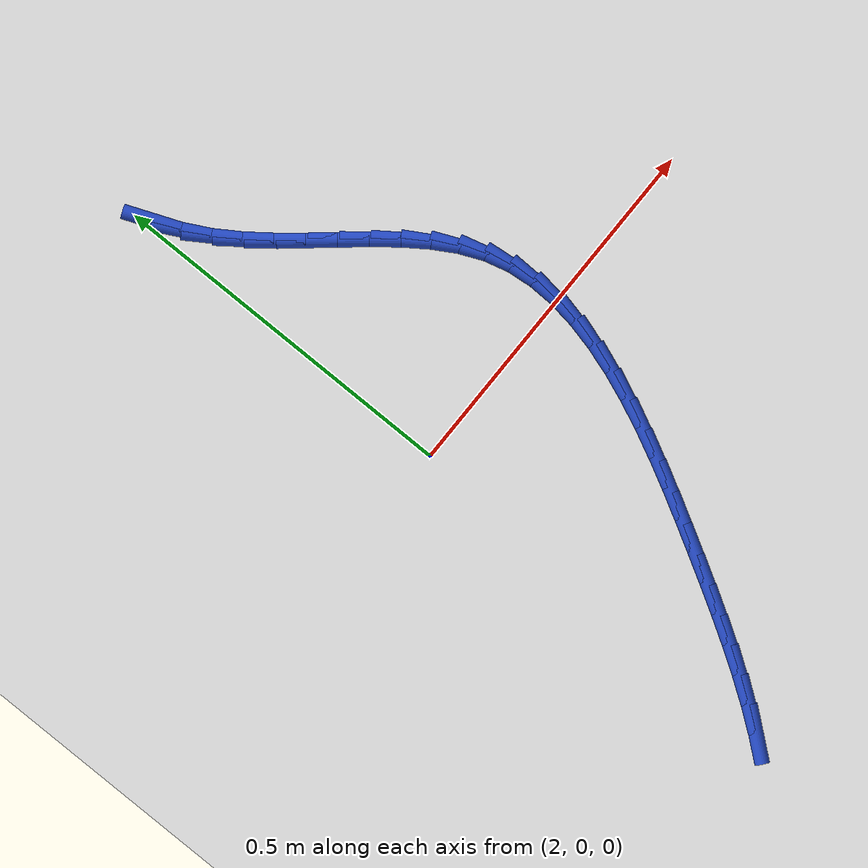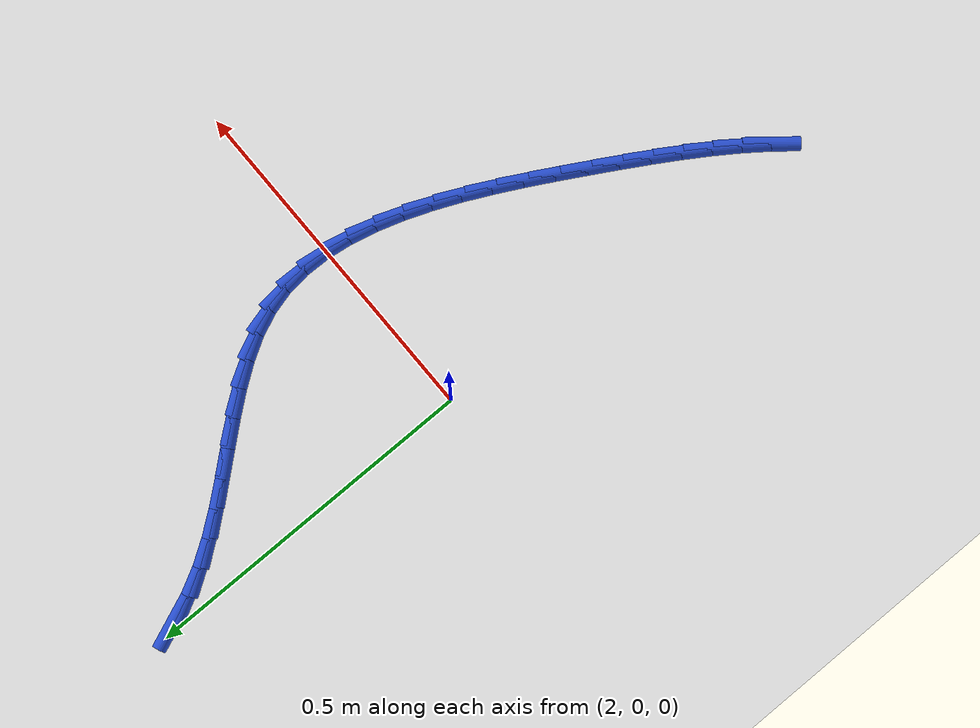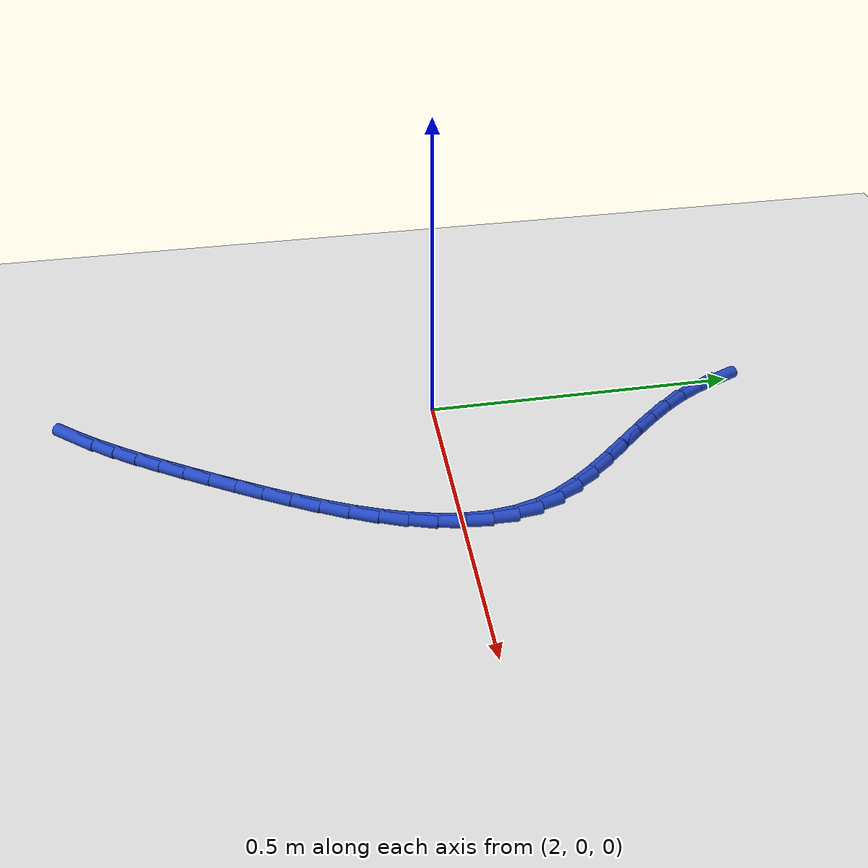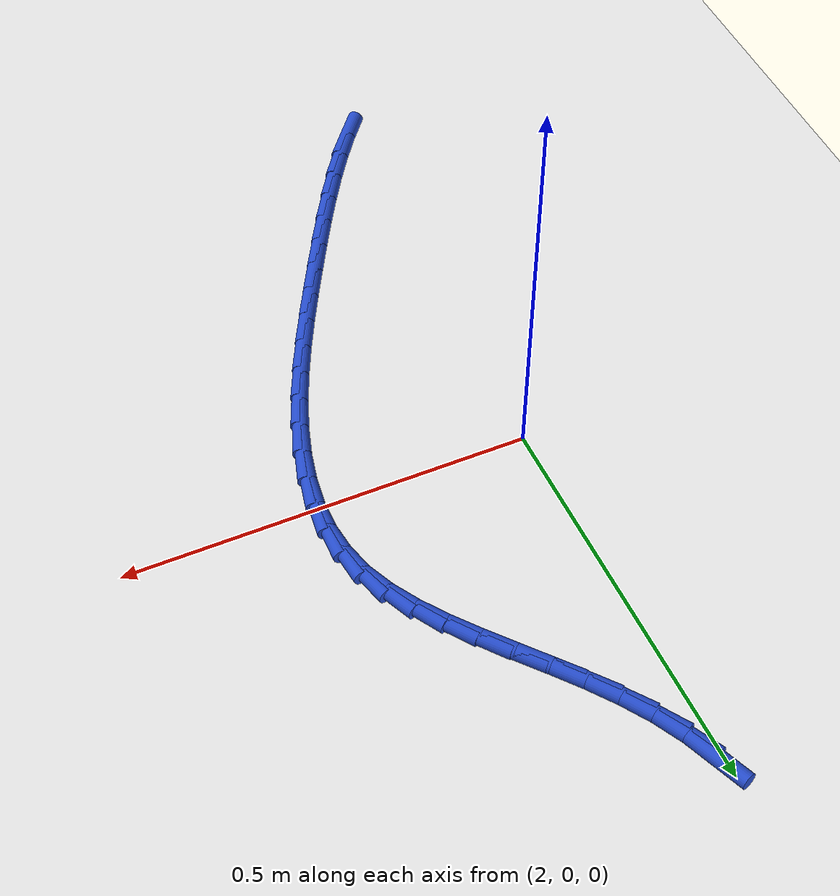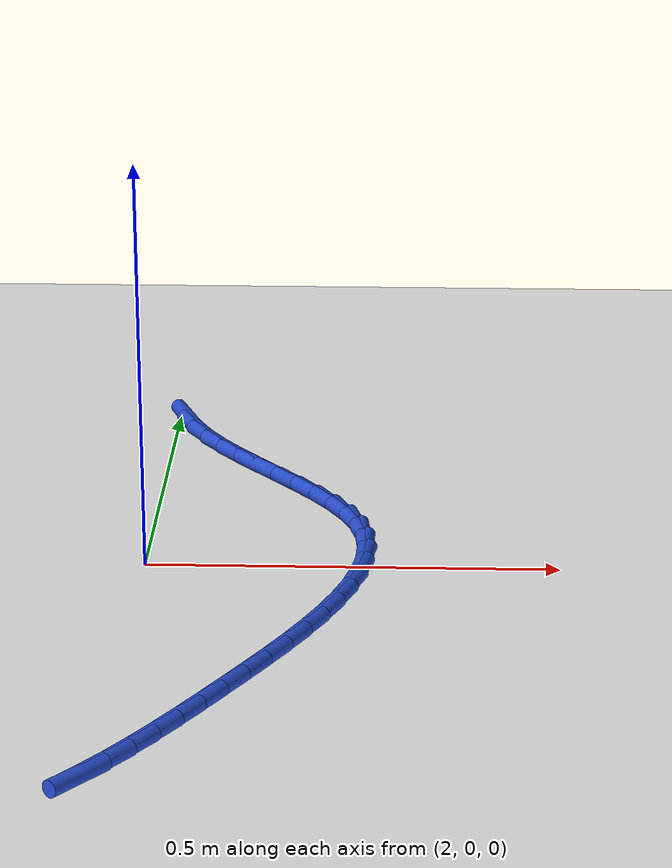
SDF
<sdf version="1.6">
 <world name="default">
  <model name="ground_plane">
   <static>1</static>
   <link name="link">
    <collision name="collision">
     <geometry><plane><normal>0 0 1</normal><size>100 100</size></plane></geometry>
     <surface><friction><ode><mu>100</mu><mu2>50</mu2></ode></friction></surface>
    </collision>
    <visual name="visual">
     <cast_shadows>0</cast_shadows>
     <geometry><plane><normal>0 0 1</normal><size>100 100</size></plane></geometry>
     <material>
      <script><uri>file://media/materials/scripts/gazebo.material</uri><name>Gazebo/WhiteGlow</name></script>
     </material>
    </visual>
   </link>
  </model>
  <model name="line">
   <link name="link_75">
    <pose>2.009465036958212 0.47721099685239343 0.01 0 1.57 -1.1901596395460023</pose>
    <collision name="collision">
     <geometry><cylinder><radius>0.01</radius><length>0.08</length></cylinder></geometry>
    </collision>
    <visual name="visual">
     <material>
      <script><name>Gazebo/Blue</name><uri>file://media/materials/scripts/gazebo.material</uri></script>
     </material>
     <geometry><cylinder><radius>0.01</radius><length>0.08</length></cylinder></geometry>
    </visual>
   </link>
   <link name="link_76">
    <pose>2.0244630913120405 0.4397300257425696 0.01 0 1.57 -1.0890325268328094</pose>
    <collision name="collision">
     <geometry><cylinder><radius>0.01</radius><length>0.08</length></cylinder></geometry>
    </collision>
    <visual name="visual">
     <material>
      <script><name>Gazebo/Blue</name><uri>file://media/materials/scripts/gazebo.material</uri></script>
     </material>
     <geometry><cylinder><radius>0.01</radius><length>0.08</length></cylinder></geometry>
    </visual>
   </link>
   <link name="link_77">
    <pose>2.0432723561949198 0.4037558578952057 0.01 0 1.57 -0.9953839938297087</pose>
    <collision name="collision">
     <geometry><cylinder><radius>0.01</radius><length>0.08</length></cylinder></geometry>
    </collision>
    <visual name="visual">
     <material>
      <script><name>Gazebo/Blue</name><uri>file://media/materials/scripts/gazebo.material</uri></script>
     </material>
     <geometry><cylinder><radius>0.01</radius><length>0.08</length></cylinder></geometry>
    </visual>
   </link>
   <link name="link_78">
    <pose>2.0656333263838604 0.36928176543898505 0.01 0 1.57 -0.9282982456410209</pose>
    <collision name="collision">
     <geometry><cylinder><radius>0.01</radius><length>0.08</length></cylinder></geometry>
    </collision>
    <visual name="visual">
     <material>
      <script><name>Gazebo/Blue</name><uri>file://media/materials/scripts/gazebo.material</uri></script>
     </material>
     <geometry><cylinder><radius>0.01</radius><length>0.08</length></cylinder></geometry>
    </visual>
   </link>
   <link name="link_79">
    <pose>2.090542085906743 0.3360005926293049 0.01 0 1.57 -0.8861530608375257</pose>
    <collision name="collision">
     <geometry><cylinder><radius>0.01</radius><length>0.08</length></cylinder></geometry>
    </collision>
    <visual name="visual">
     <material>
      <script><name>Gazebo/Blue</name><uri>file://media/materials/scripts/gazebo.material</uri></script>
     </material>
     <geometry><cylinder><radius>0.01</radius><length>0.08</length></cylinder></geometry>
    </visual>
   </link>
   <link name="link_80">
    <pose>2.116990211699759 0.30360336475807675 0.01 0 1.57 -0.8675779567971761</pose>
    <collision name="collision">
     <geometry><cylinder><radius>0.01</radius><length>0.08</length></cylinder></geometry>
    </collision>
    <visual name="visual">
     <material>
      <script><name>Gazebo/Blue</name><uri>file://media/materials/scripts/gazebo.material</uri></script>
     </material>
     <geometry><cylinder><radius>0.01</radius><length>0.08</length></cylinder></geometry>
    </visual>
   </link>
   <link name="link_81">
    <pose>2.1439692806990953 0.27178110711721254 0.01 0 1.57 -0.8722418772306473</pose>
    <collision name="collision">
     <geometry><cylinder><radius>0.01</radius><length>0.08</length></cylinder></geometry>
    </collision>
    <visual name="visual">
     <material>
      <script><name>Gazebo/Blue</name><uri>file://media/materials/scripts/gazebo.material</uri></script>
     </material>
     <geometry><cylinder><radius>0.01</radius><length>0.08</length></cylinder></geometry>
    </visual>
   </link>
   <link name="link_82">
    <pose>2.1704708698409445 0.24022484499862362 0.01 0 1.57 -0.9011647699806342</pose>
    <collision name="collision">
     <geometry><cylinder><radius>0.01</radius><length>0.08</length></cylinder></geometry>
    </collision>
    <visual name="visual">
     <material>
      <script><name>Gazebo/Blue</name><uri>file://media/materials/scripts/gazebo.material</uri></script>
     </material>
     <geometry><cylinder><radius>0.01</radius><length>0.08</length></cylinder></geometry>
    </visual>
   </link>
   <link name="link_83">
    <pose>2.1954865560614936 0.20862560369422084 0.01 0 1.57 -0.9568110245400535</pose>
    <collision name="collision">
     <geometry><cylinder><radius>0.01</radius><length>0.08</length></cylinder></geometry>
    </collision>
    <visual name="visual">
     <material>
      <script><name>Gazebo/Blue</name><uri>file://media/materials/scripts/gazebo.material</uri></script>
     </material>
     <geometry><cylinder><radius>0.01</radius><length>0.08</length></cylinder></geometry>
    </visual>
   </link>
   <link name="link_84">
    <pose>2.2180079162969335 0.17667440849591654 0.01 0 1.57 -1.0428392000214557</pose>
    <collision name="collision">
     <geometry><cylinder><radius>0.01</radius><length>0.08</length></cylinder></geometry>
    </collision>
    <visual name="visual">
     <material>
      <script><name>Gazebo/Blue</name><uri>file://media/materials/scripts/gazebo.material</uri></script>
     </material>
     <geometry><cylinder><radius>0.01</radius><length>0.08</length></cylinder></geometry>
    </visual>
   </link>
   <link name="link_85">
    <pose>2.237026527483454 0.14406228469562143 0.01 0 1.57 -1.1630115037468067</pose>
    <collision name="collision">
     <geometry><cylinder><radius>0.01</radius><length>0.08</length></cylinder></geometry>
    </collision>
    <visual name="visual">
     <material>
      <script><name>Gazebo/Blue</name><uri>file://media/materials/scripts/gazebo.material</uri></script>
     </material>
     <geometry><cylinder><radius>0.01</radius><length>0.08</length></cylinder></geometry>
    </visual>
   </link>
   <link name="link_86">
    <pose>2.251533966557244 0.11048025758524764 0.01 0 1.57 -1.3146001437915522</pose>
    <collision name="collision">
     <geometry><cylinder><radius>0.01</radius><length>0.08</length></cylinder></geometry>
    </collision>
    <visual name="visual">
     <material>
      <script><name>Gazebo/Blue</name><uri>file://media/materials/scripts/gazebo.material</uri></script>
     </material>
     <geometry><cylinder><radius>0.01</radius><length>0.08</length></cylinder></geometry>
    </visual>
   </link>
   <link name="link_87">
    <pose>2.260654742242056 0.07566184221893897 0.01 0 1.57 -1.465261764284806</pose>
    <collision name="collision">
     <geometry><cylinder><radius>0.01</radius><length>0.08</length></cylinder></geometry>
    </collision>
    <visual name="visual">
     <material>
      <script><name>Gazebo/Blue</name><uri>file://media/materials/scripts/gazebo.material</uri></script>
     </material>
     <geometry><cylinder><radius>0.01</radius><length>0.08</length></cylinder></geometry>
    </visual>
   </link>
   <link name="link_88">
    <pose>2.264469804273726 0.03964626646745025 0.01 0 1.57 1.544047833131085</pose>
    <collision name="collision">
     <geometry><cylinder><radius>0.01</radius><length>0.08</length></cylinder></geometry>
    </collision>
    <visual name="visual">
     <material>
      <script><name>Gazebo/Blue</name><uri>file://media/materials/scripts/gazebo.material</uri></script>
     </material>
     <geometry><cylinder><radius>0.01</radius><length>0.08</length></cylinder></geometry>
    </visual>
   </link>
   <link name="link_89">
    <pose>2.263478812444157 0.002606592937779756 0.01 0 1.57 1.4319334760836238</pose>
    <collision name="collision">
     <geometry><cylinder><radius>0.01</radius><length>0.08</length></cylinder></geometry>
    </collision>
    <visual name="visual">
     <material>
      <script><name>Gazebo/Blue</name><uri>file://media/materials/scripts/gazebo.material</uri></script>
     </material>
     <geometry><cylinder><radius>0.01</radius><length>0.08</length></cylinder></geometry>
    </visual>
   </link>
   <link name="link_90">
    <pose>2.258183197110086 -0.03528354982711528 0.01 0 1.57 1.3391105871862359</pose>
    <collision name="collision">
     <geometry><cylinder><radius>0.01</radius><length>0.08</length></cylinder></geometry>
    </collision>
    <visual name="visual">
     <material>
      <script><name>Gazebo/Blue</name><uri>file://media/materials/scripts/gazebo.material</uri></script>
     </material>
     <geometry><cylinder><radius>0.01</radius><length>0.08</length></cylinder></geometry>
    </visual>
   </link>
   <link name="link_91">
    <pose>2.2490843886282503 -0.07385053328427729 0.01 0 1.57 1.2634608304370893</pose>
    <collision name="collision">
     <geometry><cylinder><radius>0.01</radius><length>0.08</length></cylinder></geometry>
    </collision>
    <visual name="visual">
     <material>
      <script><name>Gazebo/Blue</name><uri>file://media/materials/scripts/gazebo.material</uri></script>
     </material>
     <geometry><cylinder><radius>0.01</radius><length>0.08</length></cylinder></geometry>
    </visual>
   </link>
   <link name="link_92">
    <pose>2.236683817355386 -0.11292072889074947 0.01 0 1.57 1.2025805851396052</pose>
    <collision name="collision">
     <geometry><cylinder><radius>0.01</radius><length>0.08</length></cylinder></geometry>
    </collision>
    <visual name="visual">
     <material>
      <script><name>Gazebo/Blue</name><uri>file://media/materials/scripts/gazebo.material</uri></script>
     </material>
     <geometry><cylinder><radius>0.01</radius><length>0.08</length></cylinder></geometry>
    </visual>
   </link>
   <link name="link_93">
    <pose>2.22148291364823 -0.15232050810357273 0.01 0 1.57 1.154273130851175</pose>
    <collision name="collision">
     <geometry><cylinder><radius>0.01</radius><length>0.08</length></cylinder></geometry>
    </collision>
    <visual name="visual">
     <material>
      <script><name>Gazebo/Blue</name><uri>file://media/materials/scripts/gazebo.material</uri></script>
     </material>
     <geometry><cylinder><radius>0.01</radius><length>0.08</length></cylinder></geometry>
    </visual>
   </link>
   <link name="link_94">
    <pose>2.2039831078635195 -0.1918762423797902 0.01 0 1.57 1.1167394899465157</pose>
    <collision name="collision">
     <geometry><cylinder><radius>0.01</radius><length>0.08</length></cylinder></geometry>
    </collision>
    <visual name="visual">
     <material>
      <script><name>Gazebo/Blue</name><uri>file://media/materials/scripts/gazebo.material</uri></script>
     </material>
     <geometry><cylinder><radius>0.01</radius><length>0.08</length></cylinder></geometry>
    </visual>
   </link>
   <link name="link_95">
    <pose>2.184685830357991 -0.23141430317644424 0.01 0 1.57 1.0886198929013462</pose>
    <collision name="collision">
     <geometry><cylinder><radius>0.01</radius><length>0.08</length></cylinder></geometry>
    </collision>
    <visual name="visual">
     <material>
      <script><name>Gazebo/Blue</name><uri>file://media/materials/scripts/gazebo.material</uri></script>
     </material>
     <geometry><cylinder><radius>0.01</radius><length>0.08</length></cylinder></geometry>
    </visual>
   </link>
   <link name="link_96">
    <pose>2.1640925114883816 -0.27076106195057736 0.01 0 1.57 1.0689793337192945</pose>
    <collision name="collision">
     <geometry><cylinder><radius>0.01</radius><length>0.08</length></cylinder></geometry>
    </collision>
    <visual name="visual">
     <material>
      <script><name>Gazebo/Blue</name><uri>file://media/materials/scripts/gazebo.material</uri></script>
     </material>
     <geometry><cylinder><radius>0.01</radius><length>0.08</length></cylinder></geometry>
    </visual>
   </link>
   <link name="link_97">
    <pose>2.142704581611428 -0.3097428901592319 0.01 0 1.57 1.0572857335739878</pose>
    <collision name="collision">
     <geometry><cylinder><radius>0.01</radius><length>0.08</length></cylinder></geometry>
    </collision>
    <visual name="visual">
     <material>
      <script><name>Gazebo/Blue</name><uri>file://media/materials/scripts/gazebo.material</uri></script>
     </material>
     <geometry><cylinder><radius>0.01</radius><length>0.08</length></cylinder></geometry>
    </visual>
   </link>
   <link name="link_98">
    <pose>2.1210234697485584 -0.3481861593286912 0.01 0 1.57 1.0509394947301052</pose>
    <collision name="collision">
     <geometry><cylinder><radius>0.01</radius><length>0.08</length></cylinder></geometry>
    </collision>
    <visual name="visual">
     <material>
      <script><name>Gazebo/Blue</name><uri>file://media/materials/scripts/gazebo.material</uri></script>
     </material>
     <geometry><cylinder><radius>0.01</radius><length>0.08</length></cylinder></geometry>
    </visual>
   </link>
   <link name="link_99">
    <pose>2.099423492134871 -0.3859238321892789 0.01 0 1.57 1.0406819910016354</pose>
    <collision name="collision">
     <geometry><cylinder><radius>0.01</radius><length>0.08</length></cylinder></geometry>
    </collision>
    <visual name="visual">
     <material>
      <script><name>Gazebo/Blue</name><uri>file://media/materials/scripts/gazebo.material</uri></script>
     </material>
     <geometry><cylinder><radius>0.01</radius><length>0.08</length></cylinder></geometry>
    </visual>
   </link>
   <link name="link_100">
    <pose>2.0778035277094418 -0.4228135244139418 0.01 0 1.57 1.0240697668642758</pose>
    <collision name="collision">
     <geometry><cylinder><radius>0.01</radius><length>0.08</length></cylinder></geometry>
    </collision>
    <visual name="visual">
     <material>
      <script><name>Gazebo/Blue</name><uri>file://media/materials/scripts/gazebo.material</uri></script>
     </material>
     <geometry><cylinder><radius>0.01</radius><length>0.08</length></cylinder></geometry>
    </visual>
   </link>
   <link name="link_101">
    <pose>2.0559513201722615 -0.4587186143928023 0.01 0 1.57 1.000768967704535</pose>
    <collision name="collision">
     <geometry><cylinder><radius>0.01</radius><length>0.08</length></cylinder></geometry>
    </collision>
    <visual name="visual">
     <material>
      <script><name>Gazebo/Blue</name><uri>file://media/materials/scripts/gazebo.material</uri></script>
     </material>
     <geometry><cylinder><radius>0.01</radius><length>0.08</length></cylinder></geometry>
    </visual>
   </link>
   <link name="link_102">
    <pose>2.0336546132233244 -0.4935024805159829 0.01 0 1.57 0.9704494219895214</pose>
    <collision name="collision">
     <geometry><cylinder><radius>0.01</radius><length>0.08</length></cylinder></geometry>
    </collision>
    <visual name="visual">
     <material>
      <script><name>Gazebo/Blue</name><uri>file://media/materials/scripts/gazebo.material</uri></script>
     </material>
     <geometry><cylinder><radius>0.01</radius><length>0.08</length></cylinder></geometry>
    </visual>
   </link>
   <link name="link_103">
    <pose>2.0107011505626207 -0.5270285011736066 0.01 0 1.57 0.9328191478072869</pose>
    <collision name="collision">
     <geometry><cylinder><radius>0.01</radius><length>0.08</length></cylinder></geometry>
    </collision>
    <visual name="visual">
     <material>
      <script><name>Gazebo/Blue</name><uri>file://media/materials/scripts/gazebo.material</uri></script>
     </material>
     <geometry><cylinder><radius>0.01</radius><length>0.08</length></cylinder></geometry>
    </visual>
   </link>
   <link name="link_104">
    <pose>1.986878675890144 -0.5591600547557949 0.01 0 1.57 0.8876758879261578</pose>
    <collision name="collision">
     <geometry><cylinder><radius>0.01</radius><length>0.08</length></cylinder></geometry>
    </collision>
    <visual name="visual">
     <material>
      <script><name>Gazebo/Blue</name><uri>file://media/materials/scripts/gazebo.material</uri></script>
     </material>
     <geometry><cylinder><radius>0.01</radius><length>0.08</length></cylinder></geometry>
    </visual>
   </link>
  </model>
 </world>
</sdf>
